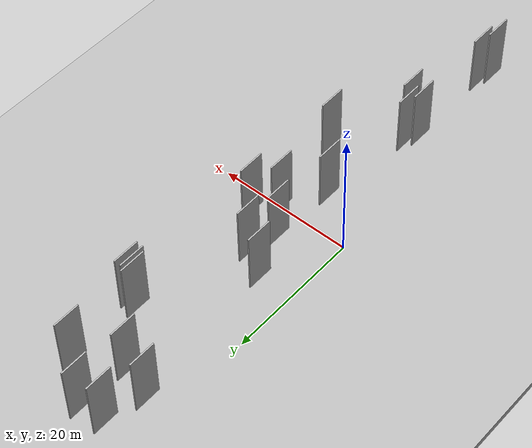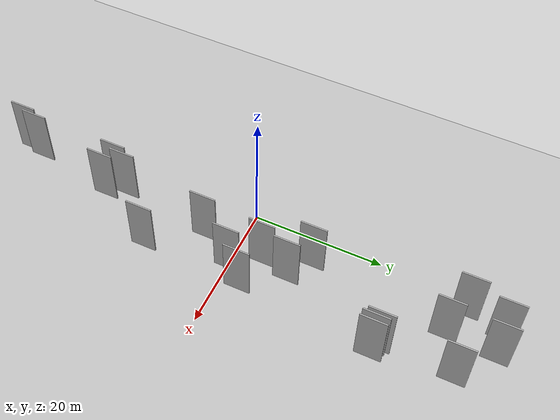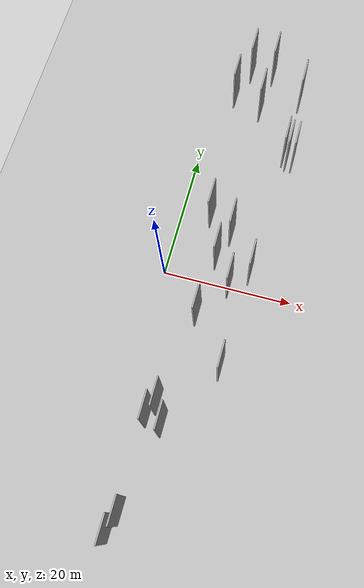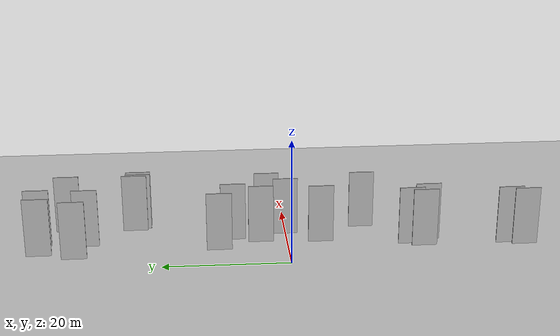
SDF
<?xml version="1.0" encoding="utf-8"?>

<sdf version="1.6">

   <world name="default">

      <gui fullscreen="0">

         <camera name="user_camera">

            <pose>-15 0 4.57585 0 0 0</pose>

            <view_controller>orbit</view_controller>

         </camera>

      </gui>

      <scene>

         <sky>

           <clouds>

             <speed>12</speed>

           </clouds>

         </sky>

         <ambient>0.4 0.4 0.4 1</ambient>

         <background>0.7 0.7 0.7 1</background>

         <shadows>1</shadows>

      </scene>

      <gravity>0 0 -9.8066</gravity>

      <magnetic_field>6e-06 2.3e-05 -4.2e-05</magnetic_field>

      <physics default="0" name="default_physics" type="ode">

         <ode>

            <solver>

               <type>quick</type>

               <iters>10</iters>

               <sor>1.0</sor>

               <use_dynamic_moi_rescaling>0</use_dynamic_moi_rescaling>

            </solver>

            <constraints>

               <cfm>0</cfm>

               <erp>0.2</erp>

               <contact_max_correcting_vel>100</contact_max_correcting_vel>

               <contact_surface_layer>0.001</contact_surface_layer>

            </constraints>

         </ode>

         <max_step_size>0.004</max_step_size>

         <real_time_factor>1</real_time_factor>

         <real_time_update_rate>250</real_time_update_rate>

      </physics>

      <light name="sun" type="directional">

         <cast_shadows>1</cast_shadows>

         <pose>0 0 10 0 0 0</pose>

         <diffuse>0.8 0.8 0.8 1</diffuse>

         <specular>0.2 0.2 0.2 1</specular>

         <attenuation>

            <range>1000</range>

            <constant>0.9</constant>

            <linear>0.01</linear>

            <quadratic>0.001</quadratic>

         </attenuation>

         <direction>-0.5 0.1 -0.9</direction>

      </light>

      <include>

         <name>ground_plane_1</name>

         <uri>model://HANNAS_ground_plane</uri>

         <pose>0 0 0  0 0 0</pose>

      </include>

      <include>

         <name>ground_plane_2</name>

         <uri>model://HANNAS_ground_plane</uri>

         <pose>100 0 0  0 0 0</pose>

      </include>

      <model name="HANNAS_wall_1">

         <static>1</static>

         <pose frame="">7.3902 4.2651 0.0 0.000000 0.000000 1.570796</pose>

         <link name="link">

            <pose frame="">0 0 5.00 0 0 0</pose>

            <collision name="collision">

               <geometry>

                  <box>

                     <size>4.00 0.2 10.00</size>

                  </box>

               </geometry>

               <max_contacts>10</max_contacts>

               <surface>

                  <contact>

                     <ode/>

                  </contact>

                  <bounce/>

                  <friction>

                     <torsional>

                        <ode/>

                     </torsional>

                     <ode/>

                  </friction>

               </surface>

            </collision>

            <visual name="visual">

               <cast_shadows>0</cast_shadows>

               <geometry>

                  <box>

                     <size>4.00 0.2 10.00</size>

                  </box>

               </geometry>

               <material>

                  <script>

                     <uri>model://HANNAS_wall/materials/scripts</uri>

                     <uri>model://HANNAS_wall/materials/textures</uri>

                     <name>vrc/HANNAS_wall</name>

                  </script>

               </material>

            </visual>

            <self_collide>0</self_collide>

            <enable_wind>0</enable_wind>

            <kinematic>0</kinematic>

         </link>

      </model>

      <model name="HANNAS_wall_2">

         <static>1</static>

         <pose frame="">14.0887 23.8651 0.0 0.000000 0.000000 1.570796</pose>

         <link name="link">

            <pose frame="">0 0 5.00 0 0 0</pose>

            <collision name="collision">

               <geometry>

                  <box>

                     <size>4.00 0.2 10.00</size>

                  </box>

               </geometry>

               <max_contacts>10</max_contacts>

               <surface>

                  <contact>

                     <ode/>

                  </contact>

                  <bounce/>

                  <friction>

                     <torsional>

                        <ode/>

                     </torsional>

                     <ode/>

                  </friction>

               </surface>

            </collision>

            <visual name="visual">

               <cast_shadows>0</cast_shadows>

               <geometry>

                  <box>

                     <size>4.00 0.2 10.00</size>

                  </box>

               </geometry>

               <material>

                  <script>

                     <uri>model://HANNAS_wall/materials/scripts</uri>

                     <uri>model://HANNAS_wall/materials/textures</uri>

                     <name>vrc/HANNAS_wall</name>

                  </script>

               </material>

            </visual>

            <self_collide>0</self_collide>

            <enable_wind>0</enable_wind>

            <kinematic>0</kinematic>

         </link>

      </model>

      <model name="HANNAS_wall_3">

         <static>1</static>

         <pose frame="">15.0856 23.8370 0.0 0.000000 0.000000 1.570796</pose>

         <link name="link">

            <pose frame="">0 0 5.00 0 0 0</pose>

            <collision name="collision">

               <geometry>

                  <box>

                     <size>4.00 0.2 10.00</size>

                  </box>

               </geometry>

               <max_contacts>10</max_contacts>

               <surface>

                  <contact>

                     <ode/>

                  </contact>

                  <bounce/>

                  <friction>

                     <torsional>

                        <ode/>

                     </torsional>

                     <ode/>

                  </friction>

               </surface>

            </collision>

            <visual name="visual">

               <cast_shadows>0</cast_shadows>

               <geometry>

                  <box>

                     <size>4.00 0.2 10.00</size>

                  </box>

               </geometry>

               <material>

                  <script>

                     <uri>model://HANNAS_wall/materials/scripts</uri>

                     <uri>model://HANNAS_wall/materials/textures</uri>

                     <name>vrc/HANNAS_wall</name>

                  </script>

               </material>

            </visual>

            <self_collide>0</self_collide>

            <enable_wind>0</enable_wind>

            <kinematic>0</kinematic>

         </link>

      </model>

      <model name="HANNAS_wall_4">

         <static>1</static>

         <pose frame="">3.0893 33.5921 0.0 0.000000 0.000000 1.570796</pose>

         <link name="link">

            <pose frame="">0 0 5.00 0 0 0</pose>

            <collision name="collision">

               <geometry>

                  <box>

                     <size>4.00 0.2 10.00</size>

                  </box>

               </geometry>

               <max_contacts>10</max_contacts>

               <surface>

                  <contact>

                     <ode/>

                  </contact>

                  <bounce/>

                  <friction>

                     <torsional>

                        <ode/>

                     </torsional>

                     <ode/>

                  </friction>

               </surface>

            </collision>

            <visual name="visual">

               <cast_shadows>0</cast_shadows>

               <geometry>

                  <box>

                     <size>4.00 0.2 10.00</size>

                  </box>

               </geometry>

               <material>

                  <script>

                     <uri>model://HANNAS_wall/materials/scripts</uri>

                     <uri>model://HANNAS_wall/materials/textures</uri>

                     <name>vrc/HANNAS_wall</name>

                  </script>

               </material>

            </visual>

            <self_collide>0</self_collide>

            <enable_wind>0</enable_wind>

            <kinematic>0</kinematic>

         </link>

      </model>

      <model name="HANNAS_wall_5">

         <static>1</static>

         <pose frame="">3.2515 -37.6467 0.0 0.000000 0.000000 1.570796</pose>

         <link name="link">

            <pose frame="">0 0 5.00 0 0 0</pose>

            <collision name="collision">

               <geometry>

                  <box>

                     <size>4.00 0.2 10.00</size>

                  </box>

               </geometry>

               <max_contacts>10</max_contacts>

               <surface>

                  <contact>

                     <ode/>

                  </contact>

                  <bounce/>

                  <friction>

                     <torsional>

                        <ode/>

                     </torsional>

                     <ode/>

                  </friction>

               </surface>

            </collision>

            <visual name="visual">

               <cast_shadows>0</cast_shadows>

               <geometry>

                  <box>

                     <size>4.00 0.2 10.00</size>

                  </box>

               </geometry>

               <material>

                  <script>

                     <uri>model://HANNAS_wall/materials/scripts</uri>

                     <uri>model://HANNAS_wall/materials/textures</uri>

                     <name>vrc/HANNAS_wall</name>

                  </script>

               </material>

            </visual>

            <self_collide>0</self_collide>

            <enable_wind>0</enable_wind>

            <kinematic>0</kinematic>

         </link>

      </model>

      <model name="HANNAS_wall_6">

         <static>1</static>

         <pose frame="">12.9603 3.0731 0.0 0.000000 0.000000 1.570796</pose>

         <link name="link">

            <pose frame="">0 0 5.00 0 0 0</pose>

            <collision name="collision">

               <geometry>

                  <box>

                     <size>4.00 0.2 10.00</size>

                  </box>

               </geometry>

               <max_contacts>10</max_contacts>

               <surface>

                  <contact>

                     <ode/>

                  </contact>

                  <bounce/>

                  <friction>

                     <torsional>

                        <ode/>

                     </torsional>

                     <ode/>

                  </friction>

               </surface>

            </collision>

            <visual name="visual">

               <cast_shadows>0</cast_shadows>

               <geometry>

                  <box>

                     <size>4.00 0.2 10.00</size>

                  </box>

               </geometry>

               <material>

                  <script>

                     <uri>model://HANNAS_wall/materials/scripts</uri>

                     <uri>model://HANNAS_wall/materials/textures</uri>

                     <name>vrc/HANNAS_wall</name>

                  </script>

               </material>

            </visual>

            <self_collide>0</self_collide>

            <enable_wind>0</enable_wind>

            <kinematic>0</kinematic>

         </link>

      </model>

      <model name="HANNAS_wall_7">

         <static>1</static>

         <pose frame="">10.3442 0.1792 0.0 0.000000 0.000000 1.570796</pose>

         <link name="link">

            <pose frame="">0 0 5.00 0 0 0</pose>

            <collision name="collision">

               <geometry>

                  <box>

                     <size>4.00 0.2 10.00</size>

                  </box>

               </geometry>

               <max_contacts>10</max_contacts>

               <surface>

                  <contact>

                     <ode/>

                  </contact>

                  <bounce/>

                  <friction>

                     <torsional>

                        <ode/>

                     </torsional>

                     <ode/>

                  </friction>

               </surface>

            </collision>

            <visual name="visual">

               <cast_shadows>0</cast_shadows>

               <geometry>

                  <box>

                     <size>4.00 0.2 10.00</size>

                  </box>

               </geometry>

               <material>

                  <script>

                     <uri>model://HANNAS_wall/materials/scripts</uri>

                     <uri>model://HANNAS_wall/materials/textures</uri>

                     <name>vrc/HANNAS_wall</name>

                  </script>

               </material>

            </visual>

            <self_collide>0</self_collide>

            <enable_wind>0</enable_wind>

            <kinematic>0</kinematic>

         </link>

      </model>

      <model name="HANNAS_wall_8">

         <static>1</static>

         <pose frame="">3.9194 -21.5968 0.0 0.000000 0.000000 1.570796</pose>

         <link name="link">

            <pose frame="">0 0 5.00 0 0 0</pose>

            <collision name="collision">

               <geometry>

                  <box>

                     <size>4.00 0.2 10.00</size>

                  </box>

               </geometry>

               <max_contacts>10</max_contacts>

               <surface>

                  <contact>

                     <ode/>

                  </contact>

                  <bounce/>

                  <friction>

                     <torsional>

                        <ode/>

                     </torsional>

                     <ode/>

                  </friction>

               </surface>

            </collision>

            <visual name="visual">

               <cast_shadows>0</cast_shadows>

               <geometry>

                  <box>

                     <size>4.00 0.2 10.00</size>

                  </box>

               </geometry>

               <material>

                  <script>

                     <uri>model://HANNAS_wall/materials/scripts</uri>

                     <uri>model://HANNAS_wall/materials/textures</uri>

                     <name>vrc/HANNAS_wall</name>

                  </script>

               </material>

            </visual>

            <self_collide>0</self_collide>

            <enable_wind>0</enable_wind>

            <kinematic>0</kinematic>

         </link>

      </model>

      <model name="HANNAS_wall_9">

         <static>1</static>

         <pose frame="">4.6386 39.1817 0.0 0.000000 0.000000 1.570796</pose>

         <link name="link">

            <pose frame="">0 0 5.00 0 0 0</pose>

            <collision name="collision">

               <geometry>

                  <box>

                     <size>4.00 0.2 10.00</size>

                  </box>

               </geometry>

               <max_contacts>10</max_contacts>

               <surface>

                  <contact>

                     <ode/>

                  </contact>

                  <bounce/>

                  <friction>

                     <torsional>

                        <ode/>

                     </torsional>

                     <ode/>

                  </friction>

               </surface>

            </collision>

            <visual name="visual">

               <cast_shadows>0</cast_shadows>

               <geometry>

                  <box>

                     <size>4.00 0.2 10.00</size>

                  </box>

               </geometry>

               <material>

                  <script>

                     <uri>model://HANNAS_wall/materials/scripts</uri>

                     <uri>model://HANNAS_wall/materials/textures</uri>

                     <name>vrc/HANNAS_wall</name>

                  </script>

               </material>

            </visual>

            <self_collide>0</self_collide>

            <enable_wind>0</enable_wind>

            <kinematic>0</kinematic>

         </link>

      </model>

      <model name="HANNAS_wall_10">

         <static>1</static>

         <pose frame="">3.9872 -35.1981 0.0 0.000000 0.000000 1.570796</pose>

         <link name="link">

            <pose frame="">0 0 5.00 0 0 0</pose>

            <collision name="collision">

               <geometry>

                  <box>

                     <size>4.00 0.2 10.00</size>

                  </box>

               </geometry>

               <max_contacts>10</max_contacts>

               <surface>

                  <contact>

                     <ode/>

                  </contact>

                  <bounce/>

                  <friction>

                     <torsional>

                        <ode/>

                     </torsional>

                     <ode/>

                  </friction>

               </surface>

            </collision>

            <visual name="visual">

               <cast_shadows>0</cast_shadows>

               <geometry>

                  <box>

                     <size>4.00 0.2 10.00</size>

                  </box>

               </geometry>

               <material>

                  <script>

                     <uri>model://HANNAS_wall/materials/scripts</uri>

                     <uri>model://HANNAS_wall/materials/textures</uri>

                     <name>vrc/HANNAS_wall</name>

                  </script>

               </material>

            </visual>

            <self_collide>0</self_collide>

            <enable_wind>0</enable_wind>

            <kinematic>0</kinematic>

         </link>

      </model>

      <model name="HANNAS_wall_11">

         <static>1</static>

         <pose frame="">12.2621 -12.4754 0.0 0.000000 0.000000 1.570796</pose>

         <link name="link">

            <pose frame="">0 0 5.00 0 0 0</pose>

            <collision name="collision">

               <geometry>

                  <box>

                     <size>4.00 0.2 10.00</size>

                  </box>

               </geometry>

               <max_contacts>10</max_contacts>

               <surface>

                  <contact>

                     <ode/>

                  </contact>

                  <bounce/>

                  <friction>

                     <torsional>

                        <ode/>

                     </torsional>

                     <ode/>

                  </friction>

               </surface>

            </collision>

            <visual name="visual">

               <cast_shadows>0</cast_shadows>

               <geometry>

                  <box>

                     <size>4.00 0.2 10.00</size>

                  </box>

               </geometry>

               <material>

                  <script>

                     <uri>model://HANNAS_wall/materials/scripts</uri>

                     <uri>model://HANNAS_wall/materials/textures</uri>

                     <name>vrc/HANNAS_wall</name>

                  </script>

               </material>

            </visual>

            <self_collide>0</self_collide>

            <enable_wind>0</enable_wind>

            <kinematic>0</kinematic>

         </link>

      </model>

      <model name="HANNAS_wall_12">

         <static>1</static>

         <pose frame="">4.7992 10.9709 0.0 0.000000 0.000000 1.570796</pose>

         <link name="link">

            <pose frame="">0 0 5.00 0 0 0</pose>

            <collision name="collision">

               <geometry>

                  <box>

                     <size>4.00 0.2 10.00</size>

                  </box>

               </geometry>

               <max_contacts>10</max_contacts>

               <surface>

                  <contact>

                     <ode/>

                  </contact>

                  <bounce/>

                  <friction>

                     <torsional>

                        <ode/>

                     </torsional>

                     <ode/>

                  </friction>

               </surface>

            </collision>

            <visual name="visual">

               <cast_shadows>0</cast_shadows>

               <geometry>

                  <box>

                     <size>4.00 0.2 10.00</size>

                  </box>

               </geometry>

               <material>

                  <script>

                     <uri>model://HANNAS_wall/materials/scripts</uri>

                     <uri>model://HANNAS_wall/materials/textures</uri>

                     <name>vrc/HANNAS_wall</name>

                  </script>

               </material>

            </visual>

            <self_collide>0</self_collide>

            <enable_wind>0</enable_wind>

            <kinematic>0</kinematic>

         </link>

      </model>

      <model name="HANNAS_wall_13">

         <static>1</static>

         <pose frame="">13.4508 24.4214 0.0 0.000000 0.000000 1.570796</pose>

         <link name="link">

            <pose frame="">0 0 5.00 0 0 0</pose>

            <collision name="collision">

               <geometry>

                  <box>

                     <size>4.00 0.2 10.00</size>

                  </box>

               </geometry>

               <max_contacts>10</max_contacts>

               <surface>

                  <contact>

                     <ode/>

                  </contact>

                  <bounce/>

                  <friction>

                     <torsional>

                        <ode/>

                     </torsional>

                     <ode/>

                  </friction>

               </surface>

            </collision>

            <visual name="visual">

               <cast_shadows>0</cast_shadows>

               <geometry>

                  <box>

                     <size>4.00 0.2 10.00</size>

                  </box>

               </geometry>

               <material>

                  <script>

                     <uri>model://HANNAS_wall/materials/scripts</uri>

                     <uri>model://HANNAS_wall/materials/textures</uri>

                     <name>vrc/HANNAS_wall</name>

                  </script>

               </material>

            </visual>

            <self_collide>0</self_collide>

            <enable_wind>0</enable_wind>

            <kinematic>0</kinematic>

         </link>

      </model>

      <model name="HANNAS_wall_14">

         <static>1</static>

         <pose frame="">6.7664 -5.2816 0.0 0.000000 0.000000 1.570796</pose>

         <link name="link">

            <pose frame="">0 0 5.00 0 0 0</pose>

            <collision name="collision">

               <geometry>

                  <box>

                     <size>4.00 0.2 10.00</size>

                  </box>

               </geometry>

               <max_contacts>10</max_contacts>

               <surface>

                  <contact>

                     <ode/>

                  </contact>

                  <bounce/>

                  <friction>

                     <torsional>

                        <ode/>

                     </torsional>

                     <ode/>

                  </friction>

               </surface>

            </collision>

            <visual name="visual">

               <cast_shadows>0</cast_shadows>

               <geometry>

                  <box>

                     <size>4.00 0.2 10.00</size>

                  </box>

               </geometry>

               <material>

                  <script>

                     <uri>model://HANNAS_wall/materials/scripts</uri>

                     <uri>model://HANNAS_wall/materials/textures</uri>

                     <name>vrc/HANNAS_wall</name>

                  </script>

               </material>

            </visual>

            <self_collide>0</self_collide>

            <enable_wind>0</enable_wind>

            <kinematic>0</kinematic>

         </link>

      </model>

      <model name="HANNAS_wall_15">

         <static>1</static>

         <pose frame="">8.6253 8.6514 0.0 0.000000 0.000000 1.570796</pose>

         <link name="link">

            <pose frame="">0 0 5.00 0 0 0</pose>

            <collision name="collision">

               <geometry>

                  <box>

                     <size>4.00 0.2 10.00</size>

                  </box>

               </geometry>

               <max_contacts>10</max_contacts>

               <surface>

                  <contact>

                     <ode/>

                  </contact>

                  <bounce/>

                  <friction>

                     <torsional>

                        <ode/>

                     </torsional>

                     <ode/>

                  </friction>

               </surface>

            </collision>

            <visual name="visual">

               <cast_shadows>0</cast_shadows>

               <geometry>

                  <box>

                     <size>4.00 0.2 10.00</size>

                  </box>

               </geometry>

               <material>

                  <script>

                     <uri>model://HANNAS_wall/materials/scripts</uri>

                     <uri>model://HANNAS_wall/materials/textures</uri>

                     <name>vrc/HANNAS_wall</name>

                  </script>

               </material>

            </visual>

            <self_collide>0</self_collide>

            <enable_wind>0</enable_wind>

            <kinematic>0</kinematic>

         </link>

      </model>

      <model name="HANNAS_wall_16">

         <static>1</static>

         <pose frame="">13.7812 35.2899 0.0 0.000000 0.000000 1.570796</pose>

         <link name="link">

            <pose frame="">0 0 5.00 0 0 0</pose>

            <collision name="collision">

               <geometry>

                  <box>

                     <size>4.00 0.2 10.00</size>

                  </box>

               </geometry>

               <max_contacts>10</max_contacts>

               <surface>

                  <contact>

                     <ode/>

                  </contact>

                  <bounce/>

                  <friction>

                     <torsional>

                        <ode/>

                     </torsional>

                     <ode/>

                  </friction>

               </surface>

            </collision>

            <visual name="visual">

               <cast_shadows>0</cast_shadows>

               <geometry>

                  <box>

                     <size>4.00 0.2 10.00</size>

                  </box>

               </geometry>

               <material>

                  <script>

                     <uri>model://HANNAS_wall/materials/scripts</uri>

                     <uri>model://HANNAS_wall/materials/textures</uri>

                     <name>vrc/HANNAS_wall</name>

                  </script>

               </material>

            </visual>

            <self_collide>0</self_collide>

            <enable_wind>0</enable_wind>

            <kinematic>0</kinematic>

         </link>

      </model>

      <model name="HANNAS_wall_17">

         <static>1</static>

         <pose frame="">4.8405 -19.5422 0.0 0.000000 0.000000 1.570796</pose>

         <link name="link">

            <pose frame="">0 0 5.00 0 0 0</pose>

            <collision name="collision">

               <geometry>

                  <box>

                     <size>4.00 0.2 10.00</size>

                  </box>

               </geometry>

               <max_contacts>10</max_contacts>

               <surface>

                  <contact>

                     <ode/>

                  </contact>

                  <bounce/>

                  <friction>

                     <torsional>

                        <ode/>

                     </torsional>

                     <ode/>

                  </friction>

               </surface>

            </collision>

            <visual name="visual">

               <cast_shadows>0</cast_shadows>

               <geometry>

                  <box>

                     <size>4.00 0.2 10.00</size>

                  </box>

               </geometry>

               <material>

                  <script>

                     <uri>model://HANNAS_wall/materials/scripts</uri>

                     <uri>model://HANNAS_wall/materials/textures</uri>

                     <name>vrc/HANNAS_wall</name>

                  </script>

               </material>

            </visual>

            <self_collide>0</self_collide>

            <enable_wind>0</enable_wind>

            <kinematic>0</kinematic>

         </link>

      </model>

      <model name="HANNAS_wall_18">

         <static>1</static>

         <pose frame="">8.2964 39.4989 0.0 0.000000 0.000000 1.570796</pose>

         <link name="link">

            <pose frame="">0 0 5.00 0 0 0</pose>

            <collision name="collision">

               <geometry>

                  <box>

                     <size>4.00 0.2 10.00</size>

                  </box>

               </geometry>

               <max_contacts>10</max_contacts>

               <surface>

                  <contact>

                     <ode/>

                  </contact>

                  <bounce/>

                  <friction>

                     <torsional>

                        <ode/>

                     </torsional>

                     <ode/>

                  </friction>

               </surface>

            </collision>

            <visual name="visual">

               <cast_shadows>0</cast_shadows>

               <geometry>

                  <box>

                     <size>4.00 0.2 10.00</size>

                  </box>

               </geometry>

               <material>

                  <script>

                     <uri>model://HANNAS_wall/materials/scripts</uri>

                     <uri>model://HANNAS_wall/materials/textures</uri>

                     <name>vrc/HANNAS_wall</name>

                  </script>

               </material>

            </visual>

            <self_collide>0</self_collide>

            <enable_wind>0</enable_wind>

            <kinematic>0</kinematic>

         </link>

      </model>

      <model name="HANNAS_wall_19">

         <static>1</static>

         <pose frame="">7.7733 31.9642 0.0 0.000000 0.000000 1.570796</pose>

         <link name="link">

            <pose frame="">0 0 5.00 0 0 0</pose>

            <collision name="collision">

               <geometry>

                  <box>

                     <size>4.00 0.2 10.00</size>

                  </box>

               </geometry>

               <max_contacts>10</max_contacts>

               <surface>

                  <contact>

                     <ode/>

                  </contact>

                  <bounce/>

                  <friction>

                     <torsional>

                        <ode/>

                     </torsional>

                     <ode/>

                  </friction>

               </surface>

            </collision>

            <visual name="visual">

               <cast_shadows>0</cast_shadows>

               <geometry>

                  <box>

                     <size>4.00 0.2 10.00</size>

                  </box>

               </geometry>

               <material>

                  <script>

                     <uri>model://HANNAS_wall/materials/scripts</uri>

                     <uri>model://HANNAS_wall/materials/textures</uri>

                     <name>vrc/HANNAS_wall</name>

                  </script>

               </material>

            </visual>

            <self_collide>0</self_collide>

            <enable_wind>0</enable_wind>

            <kinematic>0</kinematic>

         </link>

      </model>

      <model name="HANNAS_wall_20">

         <static>1</static>

         <pose frame="">6.3247 -22.3999 0.0 0.000000 0.000000 1.570796</pose>

         <link name="link">

            <pose frame="">0 0 5.00 0 0 0</pose>

            <collision name="collision">

               <geometry>

                  <box>

                     <size>4.00 0.2 10.00</size>

                  </box>

               </geometry>

               <max_contacts>10</max_contacts>

               <surface>

                  <contact>

                     <ode/>

                  </contact>

                  <bounce/>

                  <friction>

                     <torsional>

                        <ode/>

                     </torsional>

                     <ode/>

                  </friction>

               </surface>

            </collision>

            <visual name="visual">

               <cast_shadows>0</cast_shadows>

               <geometry>

                  <box>

                     <size>4.00 0.2 10.00</size>

                  </box>

               </geometry>

               <material>

                  <script>

                     <uri>model://HANNAS_wall/materials/scripts</uri>

                     <uri>model://HANNAS_wall/materials/textures</uri>

                     <name>vrc/HANNAS_wall</name>

                  </script>

               </material>

            </visual>

            <self_collide>0</self_collide>

            <enable_wind>0</enable_wind>

            <kinematic>0</kinematic>

         </link>

      </model>

   </world>

</sdf>

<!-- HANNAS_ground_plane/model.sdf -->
<sdf version="1.4">
<model name="HANNAS_ground_plane">
  <static>true</static>
    <link name="link">
      <collision name="collision">
        <geometry>
          <plane>
            <normal>0 0 1</normal>
            <size>1000 1000</size>
          </plane>
        </geometry>
        <surface>
          <friction>
            <ode>
              <mu>100</mu>
              <mu2>50</mu2>
            </ode>
          </friction>
        </surface>
      </collision>
      <visual name="visual">
        <cast_shadows>false</cast_shadows>
        <geometry>
          <plane>
            <normal>0 0 1</normal>
            <size>1000 1000</size>
          </plane>
        </geometry>
        <material>
          <script>
            <uri>model://HANNAS_ground_plane/materials/scripts/HANNAS_ground_plane.material</uri>
	    <uri>model://HANNAS_ground_plane/materials/textures</uri>
            <name>HANNASGroundPlane/Image</name>
          </script>
        </material>
      </visual>
    </link>
  </model>
</sdf>
